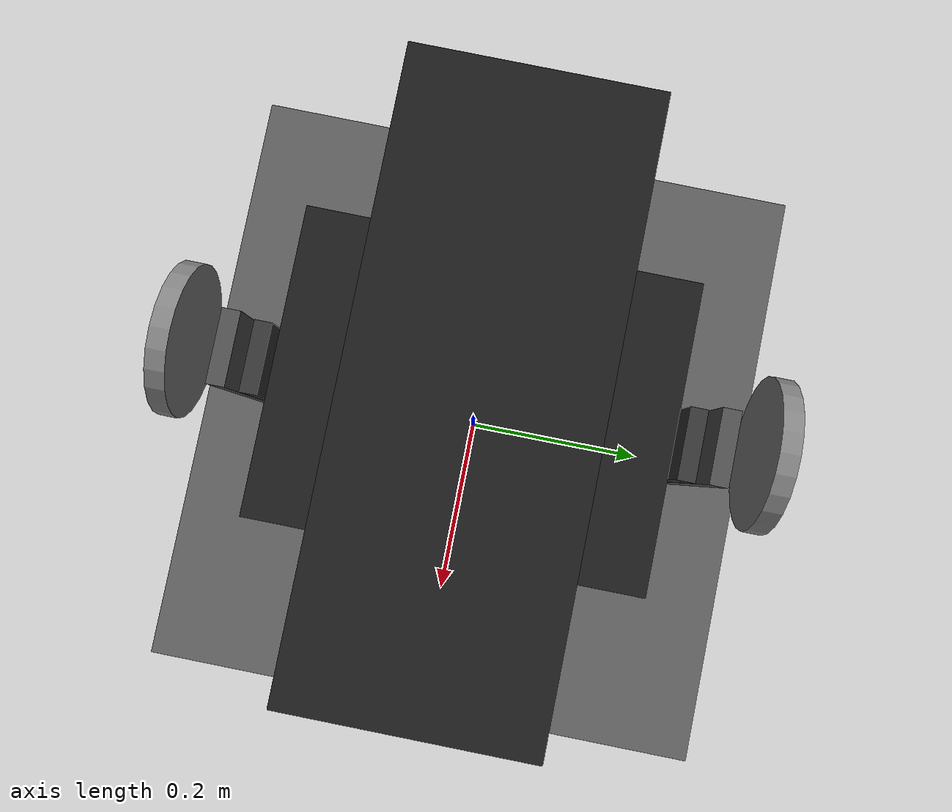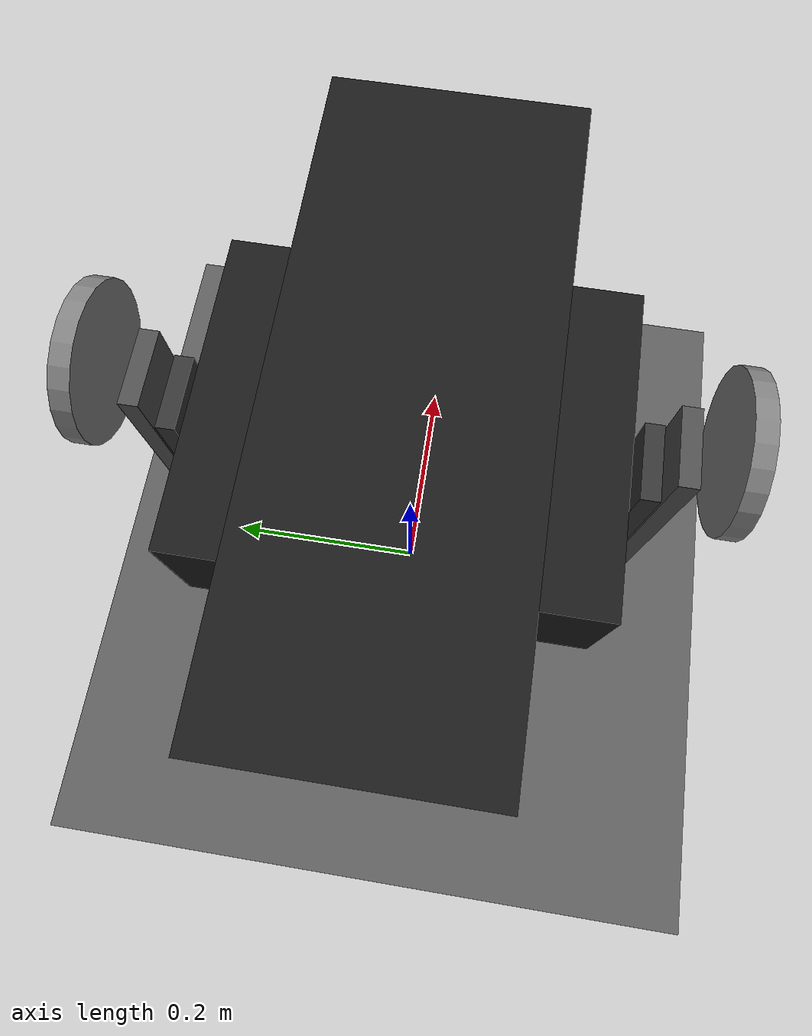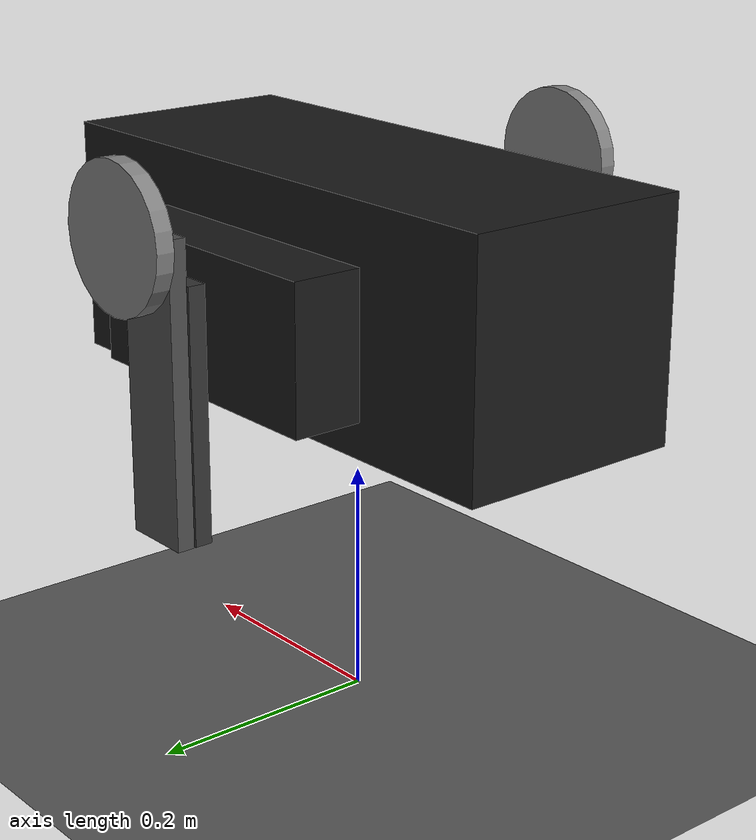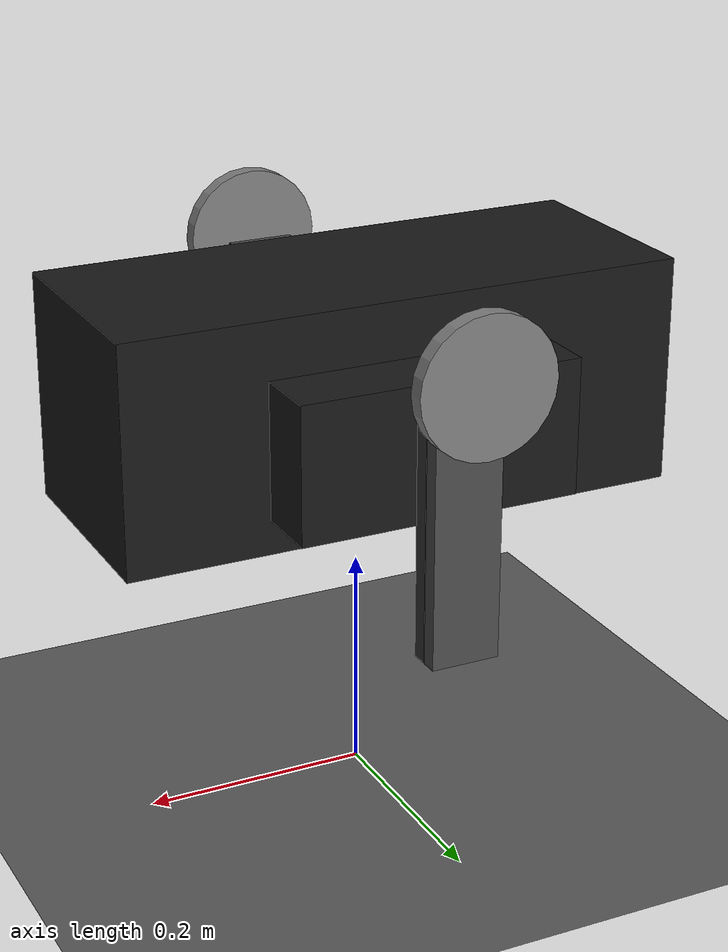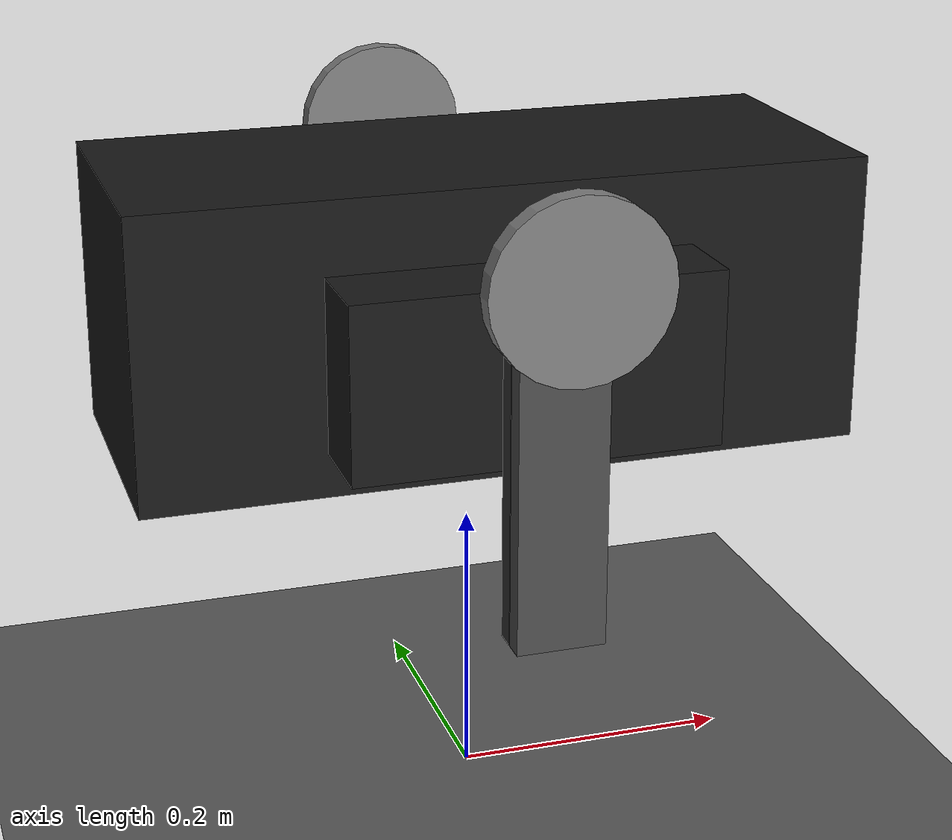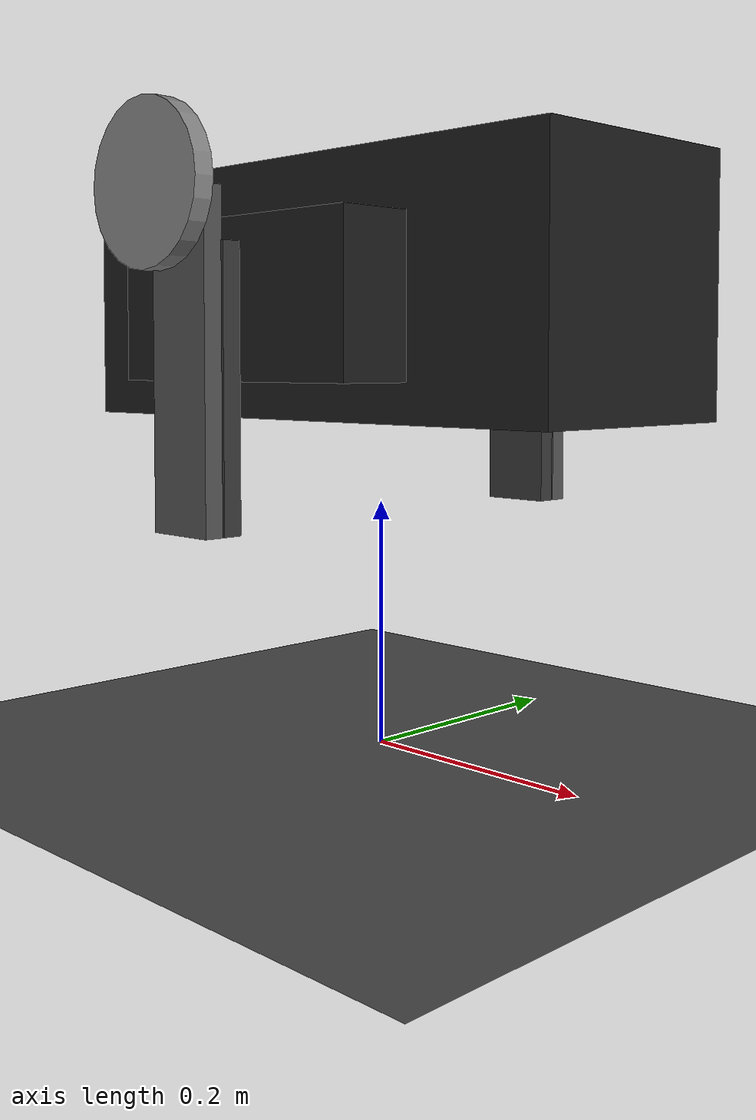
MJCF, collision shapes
<mujoco model="wheel_legged_robot">
  <compiler angle="radian" meshdir="../meshes/"/>

  <asset>
    <!-- 地面网格纹理 -->
    <texture name="grid" type="2d" builtin="checker" rgb1="0.4 0.4 0.4" rgb2="0.3 0.3 0.3" width="512" height="512"/>
    <material name="grid_mat" texture="grid" texrepeat="10 10" texuniform="true" reflectance="0.1"/>

    <!-- 基础网格 -->
    <mesh name="base_link" file="base.STL" />
    <mesh name="hip_l_link" file="hip_link_l.STL" />
    <mesh name="knee_l_link" file="knee_link_l.STL" />
    <mesh name="wheel_l" file="wheel_l.STL" />
    <mesh name="hip_r_link" file="hip_link_r.STL" />
    <mesh name="knee_r_link" file="knee_link_r.STL" />
    <mesh name="wheel_r" file="wheel_r.STL" />
  </asset>

  <worldbody>
    <!-- 光源 -->
    <light name="spotlight" mode="targetbodycom" target="base_link"
           diffuse="0.8 0.8 0.8" specular="0.2 0.2 0.2" pos="0 -2 3" cutoff="30"/>
    <light name="top" directional="true" diffuse="0.6 0.6 0.6" specular="0.2 0.2 0.2" pos="0 0 5" dir="0 0 -1"/>

    <!-- 地面 -->
    <geom name="ground" type="plane" size="50 50 0.1" material="grid_mat"
          contype="1" conaffinity="1" friction="1 0.005 0.0001"/>

    <!-- base_link: URDF inertial origin(0.0066, 0, -0.0318), mass=11.513 -->
    <body name="base_link" pos="0 0 0.4">
      <inertial pos="0.0066 0 -0.0318" mass="11.513"
                fullinertia="0.1392 0.2492 0.3111 0.001321 -0.01715 0.0002667"/>
      <joint name="floating_base" type="free"/>
      <geom type="mesh" mesh="base_link" contype="0" conaffinity="0" rgba="0.1 0.1 0.1 1"/>
      <!-- base碰撞盒 -->
      <geom type="box" size="0.25 0.10 0.10" pos="0 0 -0.03" rgba="0.1 0.1 0.1 0"/>
      <geom type="box" size="0.125 0.16 0.06" pos="0 0 -0.04" rgba="0.1 0.1 0.1 0"/>

      <!-- 左腿 hip_l_joint: origin(0, 0.179, 0), rpy(0, 1.5708, 0) -->
      <body name="hip_l_link" pos="0 0.179 0" quat="0.7071068 0 0.7071068 0">
        <inertial pos="0.098 0 0" mass="0.934"
                  fullinertia="0.0002846 0.003525624 0.0032762672 0.0000143136 0.0001012944 -0.0000042544"/>
        <joint name="hip_l_joint" pos="0 0 0" axis="0 1 0" limited="false"/>
        <geom type="mesh" mesh="hip_l_link" contype="0" conaffinity="0" rgba="0.2 0.2 0.2 1"/>
        <geom type="box" size="0.105 0.0075 0.03" pos="0.105 0 0" rgba="0.2 0.2 0.2 0"/>

        <!-- knee_l_joint: origin(0.210, 0.0165, 0), rpy(0, 3.1416, 0) -->
        <body name="knee_l_link" pos="0.210 0.0165 0" quat="0 0 1 0">
          <inertial pos="0.123 0 0" mass="0.67"
                    fullinertia="0.0009460464 0.0033157904 0.0042459008 0.0016010944 0.000006592 -0.0000033216"/>
          <joint name="knee_l_joint" pos="0 0 0" axis="0 1 0" limited="true" range="0.416 2.153"/>
          <geom type="mesh" mesh="knee_l_link" contype="0" conaffinity="0" rgba="0.3 0.3 0.3 1"/>
          <geom type="box" size="0.124 0.0075 0.03" pos="0.124 0 0" rgba="0.3 0.3 0.3 0"/>

          <!-- wheel_l_joint: origin(0.248, 0.0295, 0) -->
          <body name="wheel_l" pos="0.248 0.0295 0">
            <inertial pos="0 0 0" mass="0.468"
                      diaginertia="0.00034258 0.00054 0.000343769"/>
            <joint name="wheel_l_joint" pos="0 0 0" axis="0 1 0" limited="false"/>
            <geom type="mesh" mesh="wheel_l" contype="0" conaffinity="0" rgba="0.05 0.05 0.05 1"/>
            <geom type="cylinder" size="0.06 0.0075" quat="0.7071068 0.7071068 0 0"
                  contype="1" conaffinity="1" friction="1 0.005 0.0001"/>
          </body>
        </body>
      </body>

      <!-- 右腿 hip_r_joint: origin(0, -0.179, 0), rpy(0, 1.5708, 0) -->
      <body name="hip_r_link" pos="0 -0.179 0" quat="0.7071068 0 0.7071068 0">
        <inertial pos="0.098 0 0" mass="0.934"
                  fullinertia="0.0002846 0.003525624 0.0032762672 0.0000143136 0.0001012944 -0.0000042544"/>
        <joint name="hip_r_joint" pos="0 0 0" axis="0 1 0" limited="false"/>
        <geom type="mesh" mesh="hip_r_link" contype="0" conaffinity="0" rgba="0.2 0.2 0.2 1"/>
        <geom type="box" size="0.105 0.0075 0.03" pos="0.105 0 0" rgba="0.2 0.2 0.2 0"/>

        <!-- knee_r_joint: origin(0.210, -0.0165, 0), rpy(0, 3.1416, 0) -->
        <body name="knee_r_link" pos="0.210 -0.0165 0" quat="0 0 1 0">
          <inertial pos="0.123 0 0" mass="0.67"
                    fullinertia="0.0009460464 0.0033157904 0.0042459008 0.0016010944 0.000006592 -0.0000033216"/>
          <joint name="knee_r_joint" pos="0 0 0" axis="0 1 0" limited="true" range="0.416 2.153"/>
          <geom type="mesh" mesh="knee_r_link" contype="0" conaffinity="0" rgba="0.3 0.3 0.3 1"/>
          <geom type="box" size="0.124 0.0075 0.03" pos="0.124 0 0" rgba="0.3 0.3 0.3 0"/>

          <!-- wheel_r_joint: origin(0.248, -0.0295, 0) -->
          <body name="wheel_r" pos="0.248 -0.0295 0">
            <inertial pos="0 0 0" mass="0.468"
                      diaginertia="0.00034258 0.00054 0.000343769"/>
            <joint name="wheel_r_joint" pos="0 0 0" axis="0 1 0" limited="false"/>
            <geom type="mesh" mesh="wheel_r" contype="0" conaffinity="0" rgba="0.05 0.05 0.05 1"/>
            <geom type="cylinder" size="0.06 0.0075" quat="0.7071068 0.7071068 0 0"
                  contype="1" conaffinity="1" friction="1 0.005 0.0001"/>
          </body>
        </body>
      </body>
    </body>
  </worldbody>

  <actuator>
    <!-- 腿部执行器 effort限制 -->
    <motor name="hip_l_joint" joint="hip_l_joint" gear="1" ctrllimited="true" ctrlrange="-80 80"/>
    <motor name="knee_l_joint" joint="knee_l_joint" gear="1" ctrllimited="true" ctrlrange="-80 80"/>
    <motor name="wheel_l_joint" joint="wheel_l_joint" gear="1" ctrllimited="true" ctrlrange="-5 5"/>
    <motor name="hip_r_joint" joint="hip_r_joint" gear="1" ctrllimited="true" ctrlrange="-80 80"/>
    <motor name="knee_r_joint" joint="knee_r_joint" gear="1" ctrllimited="true" ctrlrange="-80 80"/>
    <motor name="wheel_r_joint" joint="wheel_r_joint" gear="1" ctrllimited="true" ctrlrange="-5 5"/>
  </actuator>
</mujoco>
